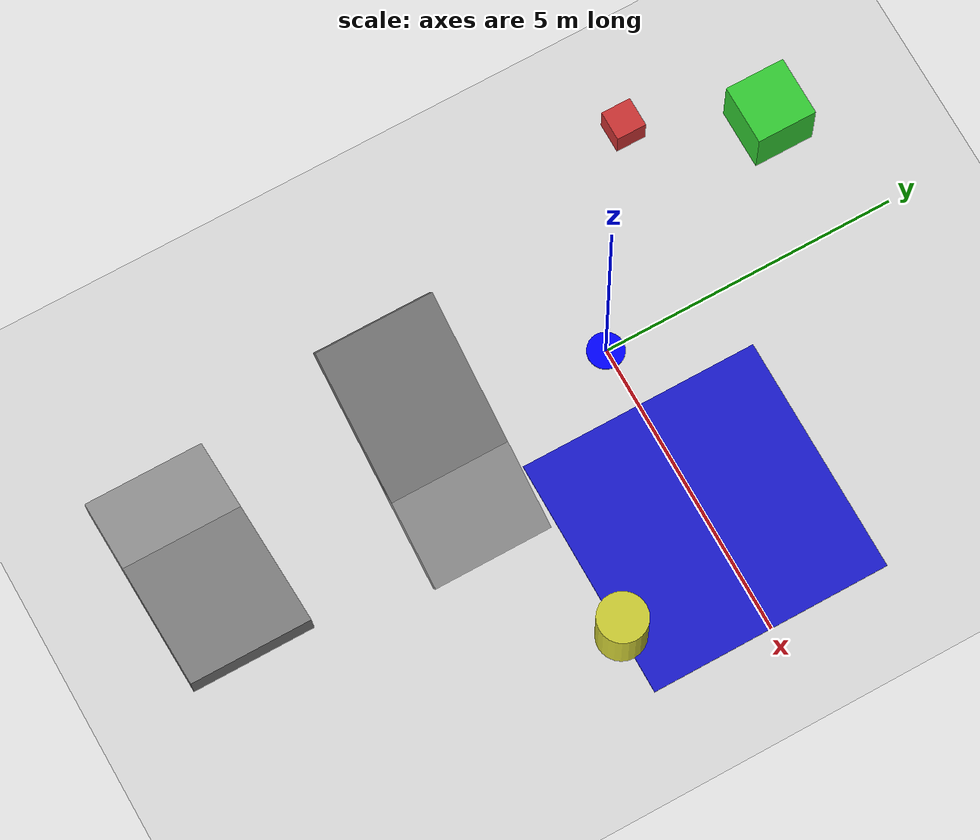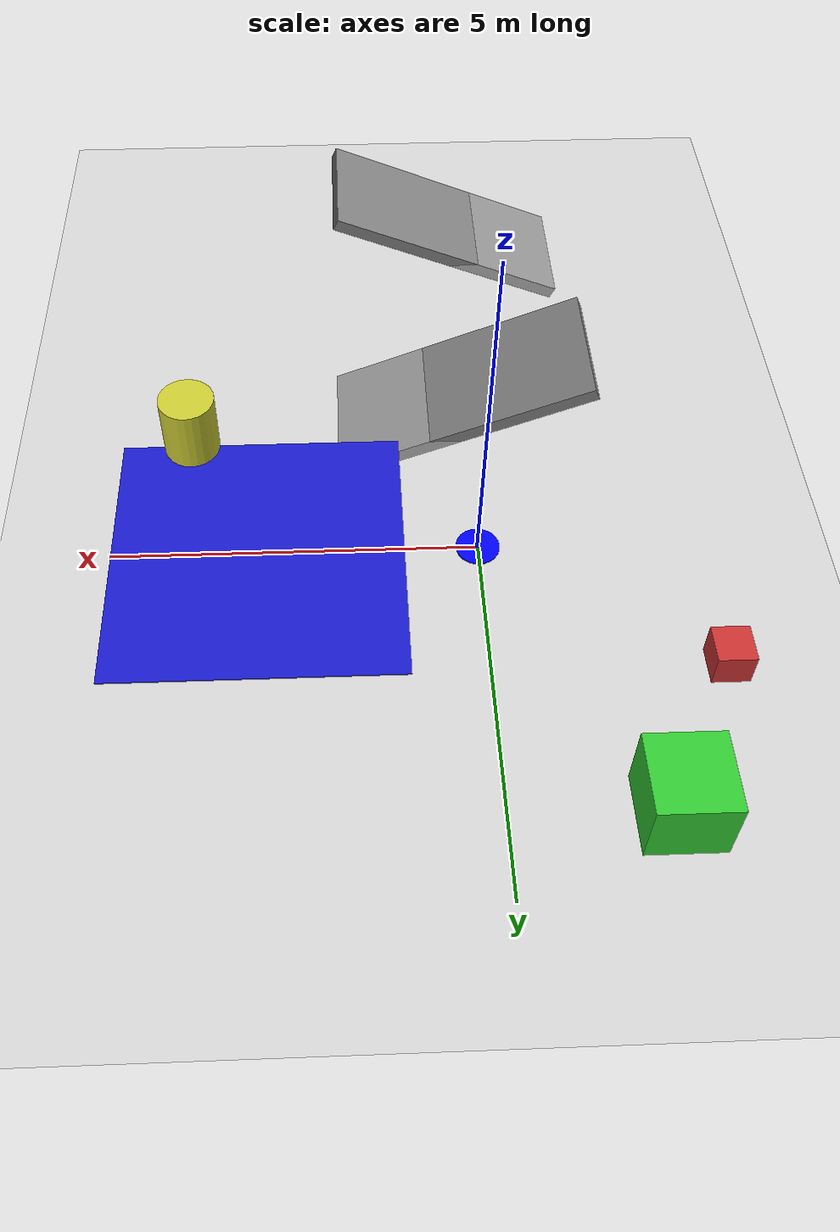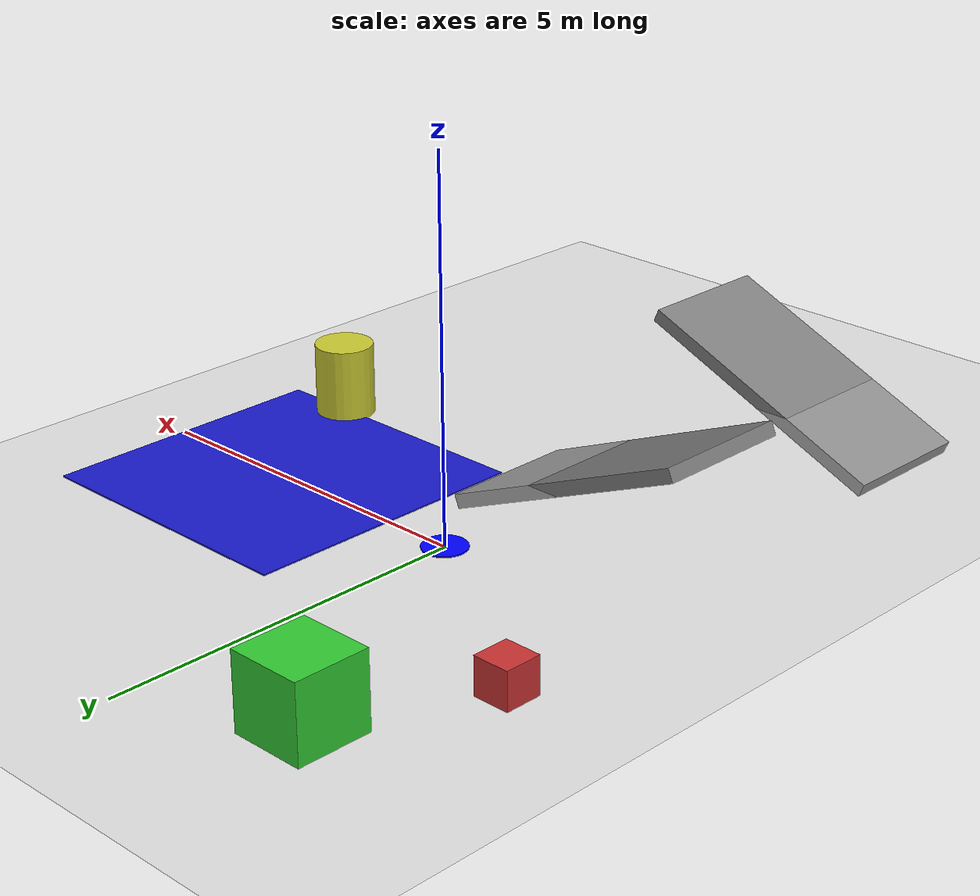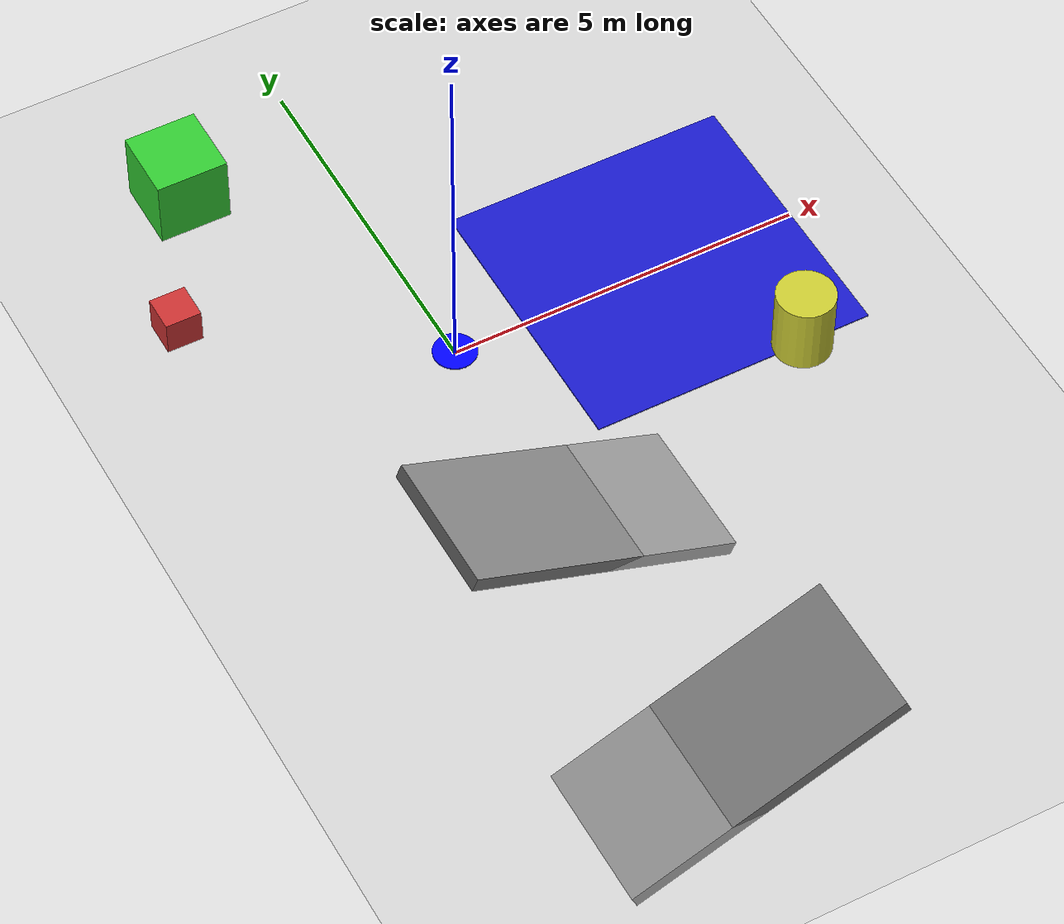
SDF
<?xml version="1.0" ?>
<sdf version="1.6">
  <world name="robot_course_world">
    <!-- Genel ayarlar -->
    <gravity>0 0 -9.81</gravity>

    <!-- Zemin -->
    <include>
      <uri>model://ground_plane</uri>
    </include>

    <!-- Işık -->
    <include>
      <uri>model://sun</uri>
    </include>

    <!-- Farklı sürtünmeli alan (kaygan zemin) -->
    <model name="low_friction_area">
      <static>true</static>
      <link name="link">
        <pose>3 0 0.01 0 0 0</pose>
        <collision name="collision">
          <geometry>
            <box>
              <size>4 4 0.02</size>
            </box>
          </geometry>
          <surface>
            <friction>
              <ode>
                <mu>0.1</mu>
                <mu2>0.1</mu2>
              </ode>
            </friction>
          </surface>
        </collision>
        <visual name="visual">
          <geometry>
            <box>
              <size>4 4 0.02</size>
            </box>
          </geometry>
          <material>
            <ambient>0.1 0.1 0.4 1</ambient>
            <diffuse>0.1 0.1 0.8 1</diffuse>
          </material>
        </visual>
      </link>
    </model>

    <!-- Rampalar -->
    <model name="ramp_up">
      <static>true</static>
      <link name="link">
        <pose>0 -3 0.1 0 0.4 0</pose>
        <collision name="collision">
          <geometry>
            <box>
              <size>4 2 0.2</size>
            </box>
          </geometry>
        </collision>
        <visual name="visual">
          <geometry>
            <box>
              <size>4 2 0.2</size>
            </box>
          </geometry>
          <material>
            <ambient>0.3 0.3 0.3 1</ambient>
            <diffuse>0.5 0.5 0.5 1</diffuse>
          </material>
        </visual>
      </link>
    </model>

    <model name="ramp_down">
      <static>true</static>
      <link name="link">
        <pose>0 -7 0.1 0 -0.4 0</pose>
        <collision name="collision">
          <geometry>
            <box>
              <size>4 2 0.2</size>
            </box>
          </geometry>
        </collision>
        <visual name="visual">
          <geometry>
            <box>
              <size>4 2 0.2</size>
            </box>
          </geometry>
          <material>
            <ambient>0.3 0.3 0.3 1</ambient>
            <diffuse>0.5 0.5 0.5 1</diffuse>
          </material>
        </visual>
      </link>
    </model>

    <!-- Engeller: kutular ve silindirler -->
    <model name="box_obstacle_1">
      <static>true</static>
      <link name="link">
        <pose>-3 2 0.25 0 0 0</pose>
        <collision name="collision">
          <geometry>
            <box>
              <size>0.5 0.5 0.5</size>
            </box>
          </geometry>
        </collision>
        <visual name="visual">
          <geometry>
            <box>
              <size>0.5 0.5 0.5</size>
            </box>
          </geometry>
          <material>
            <ambient>0.5 0.1 0.1 1</ambient>
            <diffuse>0.8 0.2 0.2 1</diffuse>
          </material>
        </visual>
      </link>
    </model>

    <model name="box_obstacle_2">
      <static>true</static>
      <link name="link">
        <pose>-2 4 0.5 0 0 0</pose>
        <collision name="collision">
          <geometry>
            <box>
              <size>1 1 1</size>
            </box>
          </geometry>
        </collision>
        <visual name="visual">
          <geometry>
            <box>
              <size>1 1 1</size>
            </box>
          </geometry>
          <material>
            <ambient>0.1 0.5 0.1 1</ambient>
            <diffuse>0.2 0.8 0.2 1</diffuse>
          </material>
        </visual>
      </link>
    </model>

    <model name="cylinder_obstacle_1">
      <static>true</static>
      <link name="link">
        <pose>4 -2 0.5 0 0 0</pose>
        <collision name="collision">
          <geometry>
            <cylinder>
              <radius>0.4</radius>
              <length>1.0</length>
            </cylinder>
          </geometry>
        </collision>
        <visual name="visual">
          <geometry>
            <cylinder>
              <radius>0.4</radius>
              <length>1.0</length>
            </cylinder>
          </geometry>
          <material>
            <ambient>0.4 0.4 0.1 1</ambient>
            <diffuse>0.8 0.8 0.2 1</diffuse>
          </material>
        </visual>
      </link>
    </model>

    <!-- Başlangıç işaretçisi -->
    <model name="start_marker">
      <static>true</static>
      <link name="link">
        <pose>0 0 0.02 0 0 0</pose>
        <visual name="visual">
          <geometry>
            <cylinder>
              <radius>0.3</radius>
              <length>0.02</length>
            </cylinder>
          </geometry>
          <material>
            <ambient>0.0 0.0 0.8 1</ambient>
            <diffuse>0.0 0.0 1.0 1</diffuse>
          </material>
        </visual>
      </link>
    </model>

  </world>
</sdf>
